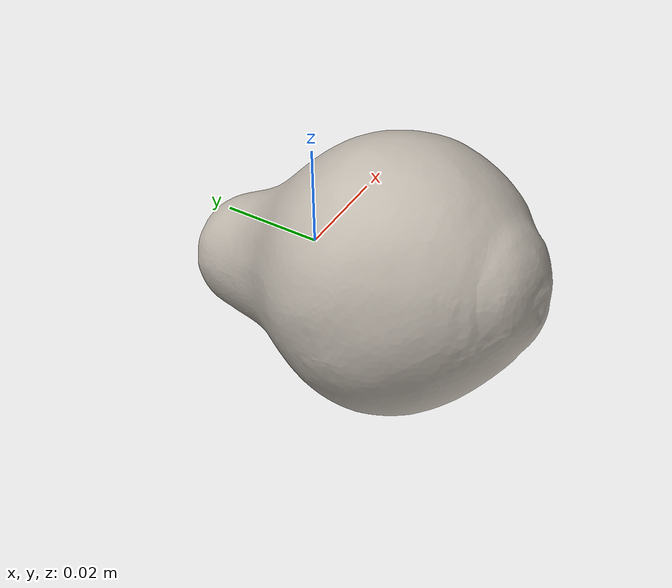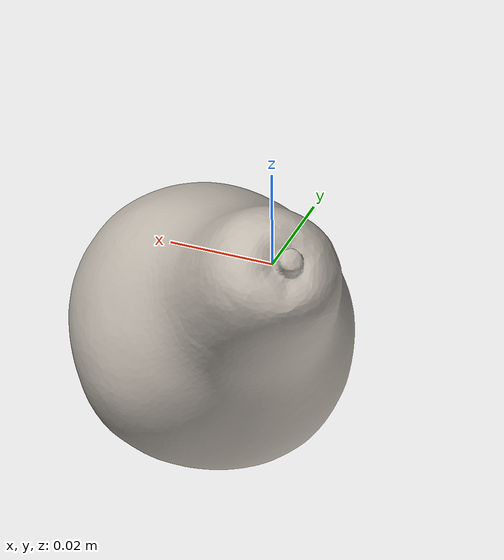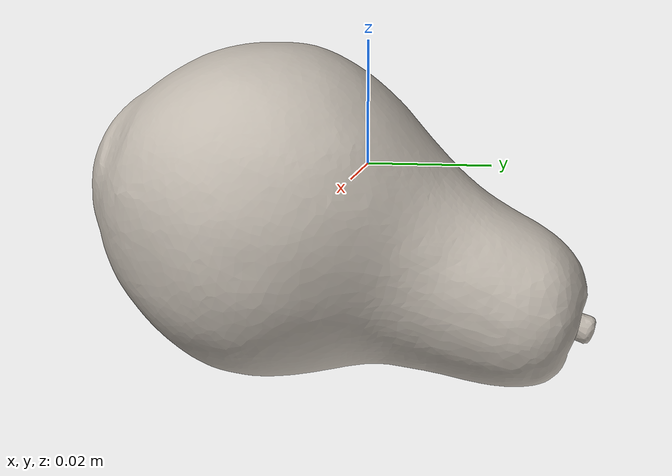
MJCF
<mujoco model="bread">
  <asset>
    <mesh file="nontextured.stl" name="obj_mesh" scale="0.8 0.8 0.8"/>
    <texture file="../../../../../textures/bread.png" type="2d" name="tex-bread" />
    <material name="bread" reflectance="0.7" texrepeat="15 15" texture="tex-bread" texuniform="true"/>
  </asset>
  <worldbody>
    <body>
      <body name="collision">
        <geom pos="0.03332 -0.017994500000000004 -0.0326525" mesh="obj_mesh" type="mesh" solimp="0.998 0.998 0.001" solref="0.001 1" density="50" friction="0.95 0.3 0.1"  material="bread" group="1" condim="4"/>
      </body>
      <body name="visual">
        <geom pos="0.03332 -0.017994500000000004 -0.0326525" mesh="obj_mesh" type="mesh" material="bread"  conaffinity="0" contype="0"  group="0" mass="0.0001"/>
        <geom pos="0.03332 -0.017994500000000004 -0.0326525" mesh="obj_mesh" type="mesh" material="bread"  conaffinity="0" contype="0"  group="1" mass="0.0001"/>
      </body>
      <site rgba="0 0 0 0" size="0.005" pos="0 0 -0.0328315" name="bottom_site"/>
      <site rgba="0 0 0 0" size="0.005" pos="0 0 0.0328315" name="top_site"/>
      <site rgba="0 0 0 0" size="0.005" pos="0.033273 0.0502275 0.0328315" name="horizontal_radius_site"/>
    </body>
  </worldbody>
</mujoco>
